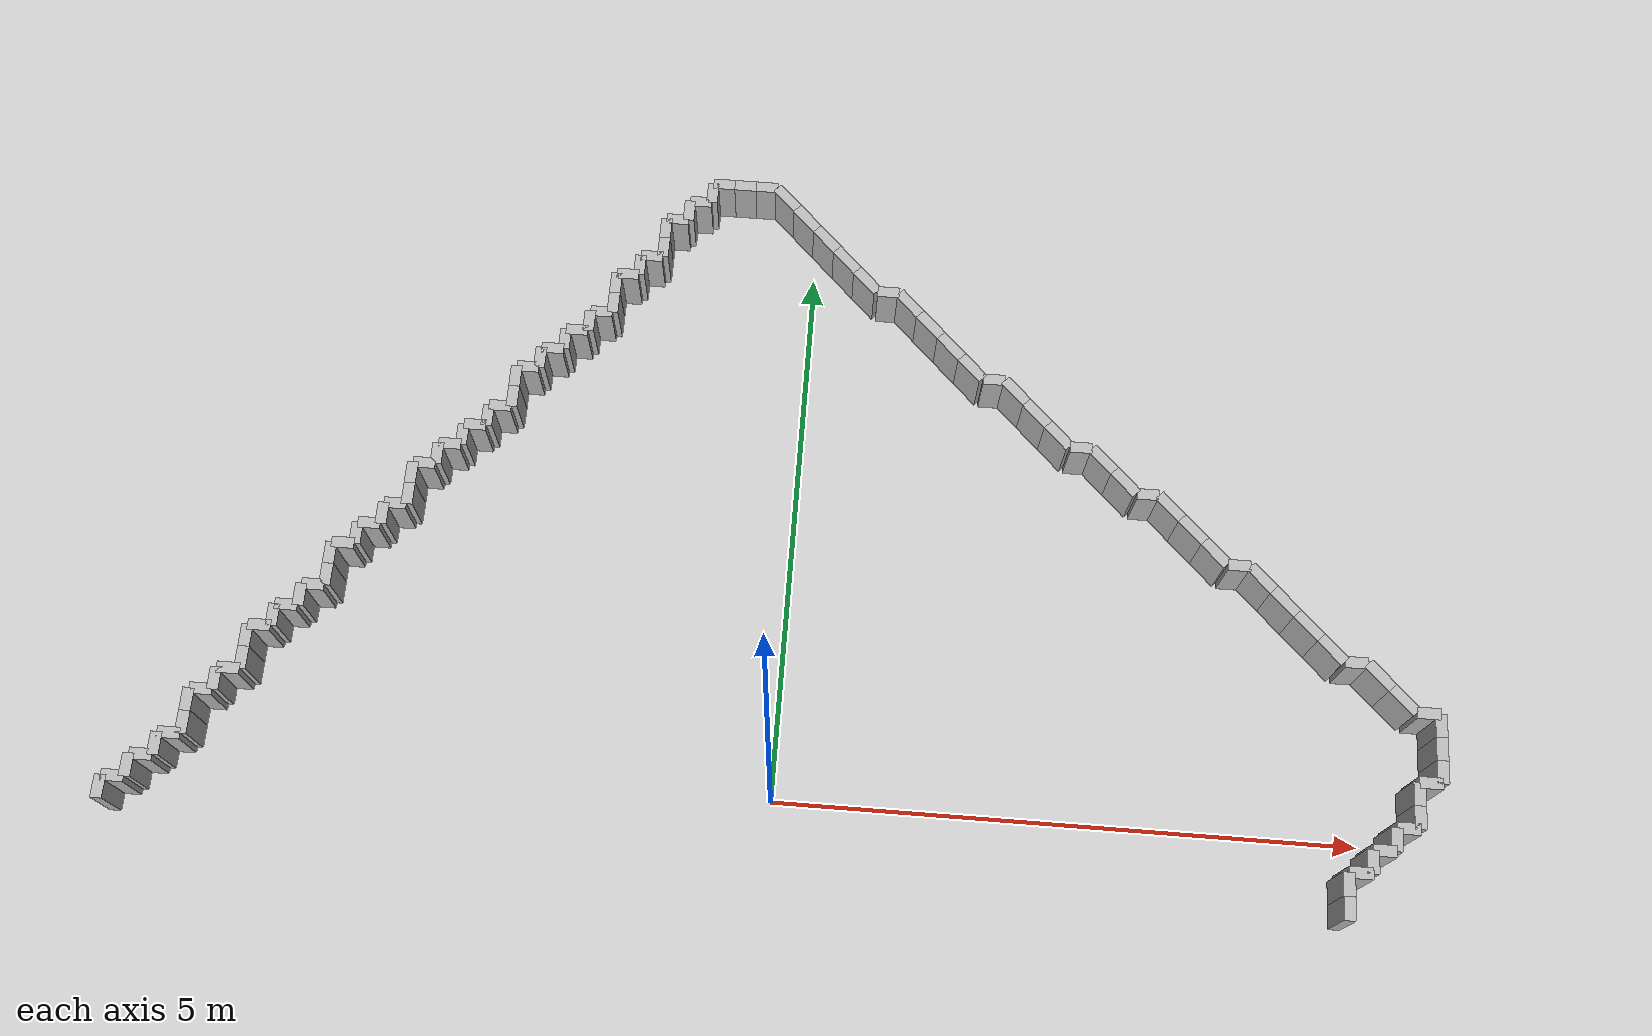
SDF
<sdf version="1.6">
 <world name="default">
  <include><uri>model://ground_plane</uri></include>
  <include><uri>model://sun</uri></include>
  <model name="wall_0">
   <static>true</static>
   <pose>4.899803921568628 -0.30000000000000004 0 0 0 0.0019607818008702204</pose>
   <link name="link">
    <collision name="collision"><geometry><box><size>0.20000038446714313 0.1 1</size></box></geometry></collision>
    <visual name="visual"><geometry><box><size>0.20000038446714313 0.1 1</size></box></geometry></visual>
   </link>
  </model>
  <model name="wall_1">
   <static>true</static>
   <pose>4.999803921568628 -0.2 0 0 0 1.5707963267948966</pose>
   <link name="link">
    <collision name="collision"><geometry><box><size>0.19960784313725524 0.1 1</size></box></geometry></collision>
    <visual name="visual"><geometry><box><size>0.19960784313725524 0.1 1</size></box></geometry></visual>
   </link>
  </model>
  <model name="wall_2">
   <static>true</static>
   <pose>5.099803921568627 -0.1 0 0 0 0.001960781800869943</pose>
   <link name="link">
    <collision name="collision"><geometry><box><size>0.20000038446714313 0.1 1</size></box></geometry></collision>
    <visual name="visual"><geometry><box><size>0.20000038446714313 0.1 1</size></box></geometry></visual>
   </link>
  </model>
  <model name="wall_3">
   <static>true</static>
   <pose>5.199803921568628 0.0 0 0 0 1.5707963267948966</pose>
   <link name="link">
    <collision name="collision"><geometry><box><size>0.19960784313725527 0.1 1</size></box></geometry></collision>
    <visual name="visual"><geometry><box><size>0.19960784313725527 0.1 1</size></box></geometry></visual>
   </link>
  </model>
  <model name="wall_4">
   <static>true</static>
   <pose>5.299803921568628 0.1 0 0 0 0.001960781800869943</pose>
   <link name="link">
    <collision name="collision"><geometry><box><size>0.20000038446714313 0.1 1</size></box></geometry></collision>
    <visual name="visual"><geometry><box><size>0.20000038446714313 0.1 1</size></box></geometry></visual>
   </link>
  </model>
  <model name="wall_5">
   <static>true</static>
   <pose>5.399803921568628 0.2 0 0 0 1.5707963267948966</pose>
   <link name="link">
    <collision name="collision"><geometry><box><size>0.19960784313725524 0.1 1</size></box></geometry></collision>
    <visual name="visual"><geometry><box><size>0.19960784313725524 0.1 1</size></box></geometry></visual>
   </link>
  </model>
  <model name="wall_6">
   <static>true</static>
   <pose>5.399803921568628 0.39980392156862765 0 0 0 1.5707963267948966</pose>
   <link name="link">
    <collision name="collision"><geometry><box><size>0.2 0.1 1</size></box></geometry></collision>
    <visual name="visual"><geometry><box><size>0.2 0.1 1</size></box></geometry></visual>
   </link>
  </model>
  <model name="wall_7">
   <static>true</static>
   <pose>5.499803921568628 0.5 0 0 0 0.001960781800869943</pose>
   <link name="link">
    <collision name="collision"><geometry><box><size>0.20000038446714313 0.1 1</size></box></geometry></collision>
    <visual name="visual"><geometry><box><size>0.20000038446714313 0.1 1</size></box></geometry></visual>
   </link>
  </model>
  <model name="wall_8">
   <static>true</static>
   <pose>5.599803921568628 0.6000000000000001 0 0 0 1.5707963267948966</pose>
   <link name="link">
    <collision name="collision"><geometry><box><size>0.19960784313725533 0.1 1</size></box></geometry></collision>
    <visual name="visual"><geometry><box><size>0.19960784313725533 0.1 1</size></box></geometry></visual>
   </link>
  </model>
  <model name="wall_9">
   <static>true</static>
   <pose>5.599803921568628 0.7998039215686277 0 0 0 1.5707963267948966</pose>
   <link name="link">
    <collision name="collision"><geometry><box><size>0.19999999999999996 0.1 1</size></box></geometry></collision>
    <visual name="visual"><geometry><box><size>0.19999999999999996 0.1 1</size></box></geometry></visual>
   </link>
  </model>
  <model name="wall_10">
   <static>true</static>
   <pose>5.599803921568628 0.9998039215686276 0 0 0 1.5707963267948966</pose>
   <link name="link">
    <collision name="collision"><geometry><box><size>0.20000000000000007 0.1 1</size></box></geometry></collision>
    <visual name="visual"><geometry><box><size>0.20000000000000007 0.1 1</size></box></geometry></visual>
   </link>
  </model>
  <model name="wall_11">
   <static>true</static>
   <pose>5.499803921568628 1.0998039215686277 0 0 0 3.141592653589793</pose>
   <link name="link">
    <collision name="collision"><geometry><box><size>0.20000000000000018 0.1 1</size></box></geometry></collision>
    <visual name="visual"><geometry><box><size>0.20000000000000018 0.1 1</size></box></geometry></visual>
   </link>
  </model>
  <model name="wall_12">
   <static>true</static>
   <pose>5.299803921568628 1.1998039215686278 0 0 0 2.3561944901923453</pose>
   <link name="link">
    <collision name="collision"><geometry><box><size>0.28284271247461906 0.1 1</size></box></geometry></collision>
    <visual name="visual"><geometry><box><size>0.28284271247461906 0.1 1</size></box></geometry></visual>
   </link>
  </model>
  <model name="wall_13">
   <static>true</static>
   <pose>5.099803921568627 1.3998039215686275 0 0 0 2.3561944901923453</pose>
   <link name="link">
    <collision name="collision"><geometry><box><size>0.28284271247461906 0.1 1</size></box></geometry></collision>
    <visual name="visual"><geometry><box><size>0.28284271247461906 0.1 1</size></box></geometry></visual>
   </link>
  </model>
  <model name="wall_14">
   <static>true</static>
   <pose>4.899803921568628 1.4998039215686276 0 0 0 3.141592653589793</pose>
   <link name="link">
    <collision name="collision"><geometry><box><size>0.20000000000000018 0.1 1</size></box></geometry></collision>
    <visual name="visual"><geometry><box><size>0.20000000000000018 0.1 1</size></box></geometry></visual>
   </link>
  </model>
  <model name="wall_15">
   <static>true</static>
   <pose>4.699803921568628 1.5998039215686277 0 0 0 2.3561944901923426</pose>
   <link name="link">
    <collision name="collision"><geometry><box><size>0.2828427124746186 0.1 1</size></box></geometry></collision>
    <visual name="visual"><geometry><box><size>0.2828427124746186 0.1 1</size></box></geometry></visual>
   </link>
  </model>
  <model name="wall_16">
   <static>true</static>
   <pose>4.499803921568628 1.799803921568628 0 0 0 2.3561944901923453</pose>
   <link name="link">
    <collision name="collision"><geometry><box><size>0.28284271247461906 0.1 1</size></box></geometry></collision>
    <visual name="visual"><geometry><box><size>0.28284271247461906 0.1 1</size></box></geometry></visual>
   </link>
  </model>
  <model name="wall_17">
   <static>true</static>
   <pose>4.299803921568628 1.9998039215686276 0 0 0 2.3561944901923453</pose>
   <link name="link">
    <collision name="collision"><geometry><box><size>0.28284271247461906 0.1 1</size></box></geometry></collision>
    <visual name="visual"><geometry><box><size>0.28284271247461906 0.1 1</size></box></geometry></visual>
   </link>
  </model>
  <model name="wall_18">
   <static>true</static>
   <pose>4.099803921568627 2.199803921568628 0 0 0 2.356194490192345</pose>
   <link name="link">
    <collision name="collision"><geometry><box><size>0.2828427124746193 0.1 1</size></box></geometry></collision>
    <visual name="visual"><geometry><box><size>0.2828427124746193 0.1 1</size></box></geometry></visual>
   </link>
  </model>
  <model name="wall_19">
   <static>true</static>
   <pose>3.899803921568628 2.299803921568628 0 0 0 3.141592653589793</pose>
   <link name="link">
    <collision name="collision"><geometry><box><size>0.19999999999999973 0.1 1</size></box></geometry></collision>
    <visual name="visual"><geometry><box><size>0.19999999999999973 0.1 1</size></box></geometry></visual>
   </link>
  </model>
  <model name="wall_20">
   <static>true</static>
   <pose>3.699803921568628 2.399803921568628 0 0 0 2.356194490192346</pose>
   <link name="link">
    <collision name="collision"><geometry><box><size>0.28284271247461895 0.1 1</size></box></geometry></collision>
    <visual name="visual"><geometry><box><size>0.28284271247461895 0.1 1</size></box></geometry></visual>
   </link>
  </model>
  <model name="wall_21">
   <static>true</static>
   <pose>3.4998039215686276 2.5998039215686277 0 0 0 2.356194490192344</pose>
   <link name="link">
    <collision name="collision"><geometry><box><size>0.28284271247461895 0.1 1</size></box></geometry></collision>
    <visual name="visual"><geometry><box><size>0.28284271247461895 0.1 1</size></box></geometry></visual>
   </link>
  </model>
  <model name="wall_22">
   <static>true</static>
   <pose>3.299803921568628 2.799803921568628 0 0 0 2.356194490192345</pose>
   <link name="link">
    <collision name="collision"><geometry><box><size>0.2828427124746193 0.1 1</size></box></geometry></collision>
    <visual name="visual"><geometry><box><size>0.2828427124746193 0.1 1</size></box></geometry></visual>
   </link>
  </model>
  <model name="wall_23">
   <static>true</static>
   <pose>3.0998039215686277 2.899803921568628 0 0 0 3.141592653589793</pose>
   <link name="link">
    <collision name="collision"><geometry><box><size>0.20000000000000018 0.1 1</size></box></geometry></collision>
    <visual name="visual"><geometry><box><size>0.20000000000000018 0.1 1</size></box></geometry></visual>
   </link>
  </model>
  <model name="wall_24">
   <static>true</static>
   <pose>2.899803921568628 2.9998039215686276 0 0 0 2.356194490192345</pose>
   <link name="link">
    <collision name="collision"><geometry><box><size>0.2828427124746186 0.1 1</size></box></geometry></collision>
    <visual name="visual"><geometry><box><size>0.2828427124746186 0.1 1</size></box></geometry></visual>
   </link>
  </model>
  <model name="wall_25">
   <static>true</static>
   <pose>2.699803921568628 3.199803921568628 0 0 0 2.356194490192345</pose>
   <link name="link">
    <collision name="collision"><geometry><box><size>0.2828427124746193 0.1 1</size></box></geometry></collision>
    <visual name="visual"><geometry><box><size>0.2828427124746193 0.1 1</size></box></geometry></visual>
   </link>
  </model>
  <model name="wall_26">
   <static>true</static>
   <pose>2.4998039215686276 3.299803921568628 0 0 0 3.141592653589793</pose>
   <link name="link">
    <collision name="collision"><geometry><box><size>0.20000000000000018 0.1 1</size></box></geometry></collision>
    <visual name="visual"><geometry><box><size>0.20000000000000018 0.1 1</size></box></geometry></visual>
   </link>
  </model>
  <model name="wall_27">
   <static>true</static>
   <pose>2.2998039215686275 3.399803921568628 0 0 0 2.356194490192345</pose>
   <link name="link">
    <collision name="collision"><geometry><box><size>0.2828427124746186 0.1 1</size></box></geometry></collision>
    <visual name="visual"><geometry><box><size>0.2828427124746186 0.1 1</size></box></geometry></visual>
   </link>
  </model>
  <model name="wall_28">
   <static>true</static>
   <pose>2.0998039215686277 3.5998039215686277 0 0 0 2.356194490192345</pose>
   <link name="link">
    <collision name="collision"><geometry><box><size>0.2828427124746193 0.1 1</size></box></geometry></collision>
    <visual name="visual"><geometry><box><size>0.2828427124746193 0.1 1</size></box></geometry></visual>
   </link>
  </model>
  <model name="wall_29">
   <static>true</static>
   <pose>1.8998039215686275 3.799803921568628 0 0 0 2.3561944901923444</pose>
   <link name="link">
    <collision name="collision"><geometry><box><size>0.28284271247461906 0.1 1</size></box></geometry></collision>
    <visual name="visual"><geometry><box><size>0.28284271247461906 0.1 1</size></box></geometry></visual>
   </link>
  </model>
  <model name="wall_30">
   <static>true</static>
   <pose>1.6998039215686278 3.899803921568628 0 0 0 3.141592653589793</pose>
   <link name="link">
    <collision name="collision"><geometry><box><size>0.19999999999999996 0.1 1</size></box></geometry></collision>
    <visual name="visual"><geometry><box><size>0.19999999999999996 0.1 1</size></box></geometry></visual>
   </link>
  </model>
  <model name="wall_31">
   <static>true</static>
   <pose>1.4998039215686276 3.999803921568628 0 0 0 2.3561944901923444</pose>
   <link name="link">
    <collision name="collision"><geometry><box><size>0.28284271247461906 0.1 1</size></box></geometry></collision>
    <visual name="visual"><geometry><box><size>0.28284271247461906 0.1 1</size></box></geometry></visual>
   </link>
  </model>
  <model name="wall_32">
   <static>true</static>
   <pose>1.2998039215686277 4.199803921568628 0 0 0 2.356194490192347</pose>
   <link name="link">
    <collision name="collision"><geometry><box><size>0.2828427124746186 0.1 1</size></box></geometry></collision>
    <visual name="visual"><geometry><box><size>0.2828427124746186 0.1 1</size></box></geometry></visual>
   </link>
  </model>
  <model name="wall_33">
   <static>true</static>
   <pose>1.0998039215686277 4.399803921568628 0 0 0 2.3561944901923444</pose>
   <link name="link">
    <collision name="collision"><geometry><box><size>0.28284271247461906 0.1 1</size></box></geometry></collision>
    <visual name="visual"><geometry><box><size>0.28284271247461906 0.1 1</size></box></geometry></visual>
   </link>
  </model>
  <model name="wall_34">
   <static>true</static>
   <pose>0.8998039215686277 4.599803921568627 0 0 0 2.3561944901923444</pose>
   <link name="link">
    <collision name="collision"><geometry><box><size>0.28284271247461906 0.1 1</size></box></geometry></collision>
    <visual name="visual"><geometry><box><size>0.28284271247461906 0.1 1</size></box></geometry></visual>
   </link>
  </model>
  <model name="wall_35">
   <static>true</static>
   <pose>0.6998039215686276 4.699803921568628 0 0 0 3.141592653589793</pose>
   <link name="link">
    <collision name="collision"><geometry><box><size>0.20000000000000007 0.1 1</size></box></geometry></collision>
    <visual name="visual"><geometry><box><size>0.20000000000000007 0.1 1</size></box></geometry></visual>
   </link>
  </model>
  <model name="wall_36">
   <static>true</static>
   <pose>0.49980392156862763 4.799803921568628 0 0 0 2.3561944901923444</pose>
   <link name="link">
    <collision name="collision"><geometry><box><size>0.28284271247461906 0.1 1</size></box></geometry></collision>
    <visual name="visual"><geometry><box><size>0.28284271247461906 0.1 1</size></box></geometry></visual>
   </link>
  </model>
  <model name="wall_37">
   <static>true</static>
   <pose>0.2998039215686277 4.999803921568628 0 0 0 2.3561944901923444</pose>
   <link name="link">
    <collision name="collision"><geometry><box><size>0.2828427124746191 0.1 1</size></box></geometry></collision>
    <visual name="visual"><geometry><box><size>0.2828427124746191 0.1 1</size></box></geometry></visual>
   </link>
  </model>
  <model name="wall_38">
   <static>true</static>
   <pose>0.09980392156862763 5.199803921568629 0 0 0 2.3561944901923444</pose>
   <link name="link">
    <collision name="collision"><geometry><box><size>0.2828427124746191 0.1 1</size></box></geometry></collision>
    <visual name="visual"><geometry><box><size>0.2828427124746191 0.1 1</size></box></geometry></visual>
   </link>
  </model>
  <model name="wall_39">
   <static>true</static>
   <pose>-0.10019607843137238 5.399803921568628 0 0 0 2.3561944901923466</pose>
   <link name="link">
    <collision name="collision"><geometry><box><size>0.2828427124746185 0.1 1</size></box></geometry></collision>
    <visual name="visual"><geometry><box><size>0.2828427124746185 0.1 1</size></box></geometry></visual>
   </link>
  </model>
  <model name="wall_40">
   <static>true</static>
   <pose>-0.3001960784313724 5.599803921568627 0 0 0 2.3561944901923444</pose>
   <link name="link">
    <collision name="collision"><geometry><box><size>0.2828427124746191 0.1 1</size></box></geometry></collision>
    <visual name="visual"><geometry><box><size>0.2828427124746191 0.1 1</size></box></geometry></visual>
   </link>
  </model>
  <model name="wall_41">
   <static>true</static>
   <pose>-0.5001960784313724 5.699803921568628 0 0 0 3.141592653589793</pose>
   <link name="link">
    <collision name="collision"><geometry><box><size>0.20000000000000007 0.1 1</size></box></geometry></collision>
    <visual name="visual"><geometry><box><size>0.20000000000000007 0.1 1</size></box></geometry></visual>
   </link>
  </model>
  <model name="wall_42">
   <static>true</static>
   <pose>-0.7001960784313724 5.699803921568628 0 0 0 3.141592653589793</pose>
   <link name="link">
    <collision name="collision"><geometry><box><size>0.19999999999999996 0.1 1</size></box></geometry></collision>
    <visual name="visual"><geometry><box><size>0.19999999999999996 0.1 1</size></box></geometry></visual>
   </link>
  </model>
  <model name="wall_43">
   <static>true</static>
   <pose>-0.9 5.699803921568628 0 0 0 3.141592653589793</pose>
   <link name="link">
    <collision name="collision"><geometry><box><size>0.19960784313725521 0.1 1</size></box></geometry></collision>
    <visual name="visual"><geometry><box><size>0.19960784313725521 0.1 1</size></box></geometry></visual>
   </link>
  </model>
  <model name="wall_44">
   <static>true</static>
   <pose>-1.0 5.599803921568627 0 0 0 -1.5727571085957666</pose>
   <link name="link">
    <collision name="collision"><geometry><box><size>0.20000038446714313 0.1 1</size></box></geometry></collision>
    <visual name="visual"><geometry><box><size>0.20000038446714313 0.1 1</size></box></geometry></visual>
   </link>
  </model>
  <model name="wall_45">
   <static>true</static>
   <pose>-1.1 5.499803921568628 0 0 0 3.141592653589793</pose>
   <link name="link">
    <collision name="collision"><geometry><box><size>0.19960784313725521 0.1 1</size></box></geometry></collision>
    <visual name="visual"><geometry><box><size>0.19960784313725521 0.1 1</size></box></geometry></visual>
   </link>
  </model>
  <model name="wall_46">
   <static>true</static>
   <pose>-1.2000000000000002 5.399803921568628 0 0 0 -1.5727571085957677</pose>
   <link name="link">
    <collision name="collision"><geometry><box><size>0.20000038446714224 0.1 1</size></box></geometry></collision>
    <visual name="visual"><geometry><box><size>0.20000038446714224 0.1 1</size></box></geometry></visual>
   </link>
  </model>
  <model name="wall_47">
   <static>true</static>
   <pose>-1.3000000000000003 5.299803921568628 0 0 0 3.141592653589793</pose>
   <link name="link">
    <collision name="collision"><geometry><box><size>0.19960784313725521 0.1 1</size></box></geometry></collision>
    <visual name="visual"><geometry><box><size>0.19960784313725521 0.1 1</size></box></geometry></visual>
   </link>
  </model>
  <model name="wall_48">
   <static>true</static>
   <pose>-1.3998039215686278 5.199803921568629 0 0 0 -1.5707963267948966</pose>
   <link name="link">
    <collision name="collision"><geometry><box><size>0.20000000000000018 0.1 1</size></box></geometry></collision>
    <visual name="visual"><geometry><box><size>0.20000000000000018 0.1 1</size></box></geometry></visual>
   </link>
  </model>
  <model name="wall_49">
   <static>true</static>
   <pose>-1.4000000000000001 4.999803921568628 0 0 0 -1.5727571085957666</pose>
   <link name="link">
    <collision name="collision"><geometry><box><size>0.20000038446714313 0.1 1</size></box></geometry></collision>
    <visual name="visual"><geometry><box><size>0.20000038446714313 0.1 1</size></box></geometry></visual>
   </link>
  </model>
  <model name="wall_50">
   <static>true</static>
   <pose>-1.4999999999999998 4.899803921568628 0 0 0 3.141592653589793</pose>
   <link name="link">
    <collision name="collision"><geometry><box><size>0.19960784313725455 0.1 1</size></box></geometry></collision>
    <visual name="visual"><geometry><box><size>0.19960784313725455 0.1 1</size></box></geometry></visual>
   </link>
  </model>
  <model name="wall_51">
   <static>true</static>
   <pose>-1.5999999999999996 4.799803921568628 0 0 0 -1.57275710859577</pose>
   <link name="link">
    <collision name="collision"><geometry><box><size>0.20000038446714313 0.1 1</size></box></geometry></collision>
    <visual name="visual"><geometry><box><size>0.20000038446714313 0.1 1</size></box></geometry></visual>
   </link>
  </model>
  <model name="wall_52">
   <static>true</static>
   <pose>-1.6999999999999997 4.699803921568628 0 0 0 3.141592653589793</pose>
   <link name="link">
    <collision name="collision"><geometry><box><size>0.19960784313725455 0.1 1</size></box></geometry></collision>
    <visual name="visual"><geometry><box><size>0.19960784313725455 0.1 1</size></box></geometry></visual>
   </link>
  </model>
  <model name="wall_53">
   <static>true</static>
   <pose>-1.799803921568627 4.599803921568627 0 0 0 -1.5707963267948966</pose>
   <link name="link">
    <collision name="collision"><geometry><box><size>0.20000000000000018 0.1 1</size></box></geometry></collision>
    <visual name="visual"><geometry><box><size>0.20000000000000018 0.1 1</size></box></geometry></visual>
   </link>
  </model>
  <model name="wall_54">
   <static>true</static>
   <pose>-1.7999999999999998 4.399803921568628 0 0 0 -1.57275710859577</pose>
   <link name="link">
    <collision name="collision"><geometry><box><size>0.20000038446714313 0.1 1</size></box></geometry></collision>
    <visual name="visual"><geometry><box><size>0.20000038446714313 0.1 1</size></box></geometry></visual>
   </link>
  </model>
  <model name="wall_55">
   <static>true</static>
   <pose>-1.8999999999999997 4.2998039215686275 0 0 0 3.141592653589793</pose>
   <link name="link">
    <collision name="collision"><geometry><box><size>0.19960784313725455 0.1 1</size></box></geometry></collision>
    <visual name="visual"><geometry><box><size>0.19960784313725455 0.1 1</size></box></geometry></visual>
   </link>
  </model>
  <model name="wall_56">
   <static>true</static>
   <pose>-1.9999999999999996 4.199803921568628 0 0 0 -1.57275710859577</pose>
   <link name="link">
    <collision name="collision"><geometry><box><size>0.20000038446714224 0.1 1</size></box></geometry></collision>
    <visual name="visual"><geometry><box><size>0.20000038446714224 0.1 1</size></box></geometry></visual>
   </link>
  </model>
  <model name="wall_57">
   <static>true</static>
   <pose>-2.0999999999999996 4.099803921568628 0 0 0 3.141592653589793</pose>
   <link name="link">
    <collision name="collision"><geometry><box><size>0.19960784313725455 0.1 1</size></box></geometry></collision>
    <visual name="visual"><geometry><box><size>0.19960784313725455 0.1 1</size></box></geometry></visual>
   </link>
  </model>
  <model name="wall_58">
   <static>true</static>
   <pose>-2.1999999999999997 3.999803921568628 0 0 0 -1.572757108595771</pose>
   <link name="link">
    <collision name="collision"><geometry><box><size>0.20000038446714313 0.1 1</size></box></geometry></collision>
    <visual name="visual"><geometry><box><size>0.20000038446714313 0.1 1</size></box></geometry></visual>
   </link>
  </model>
  <model name="wall_59">
   <static>true</static>
   <pose>-2.3 3.899803921568628 0 0 0 3.141592653589793</pose>
   <link name="link">
    <collision name="collision"><geometry><box><size>0.19960784313725455 0.1 1</size></box></geometry></collision>
    <visual name="visual"><geometry><box><size>0.19960784313725455 0.1 1</size></box></geometry></visual>
   </link>
  </model>
  <model name="wall_60">
   <static>true</static>
   <pose>-2.4 3.799803921568628 0 0 0 -1.572757108595771</pose>
   <link name="link">
    <collision name="collision"><geometry><box><size>0.20000038446714313 0.1 1</size></box></geometry></collision>
    <visual name="visual"><geometry><box><size>0.20000038446714313 0.1 1</size></box></geometry></visual>
   </link>
  </model>
  <model name="wall_61">
   <static>true</static>
   <pose>-2.5 3.699803921568628 0 0 0 3.141592653589793</pose>
   <link name="link">
    <collision name="collision"><geometry><box><size>0.19960784313725455 0.1 1</size></box></geometry></collision>
    <visual name="visual"><geometry><box><size>0.19960784313725455 0.1 1</size></box></geometry></visual>
   </link>
  </model>
  <model name="wall_62">
   <static>true</static>
   <pose>-2.5998039215686273 3.5998039215686277 0 0 0 -1.5707963267948966</pose>
   <link name="link">
    <collision name="collision"><geometry><box><size>0.20000000000000018 0.1 1</size></box></geometry></collision>
    <visual name="visual"><geometry><box><size>0.20000000000000018 0.1 1</size></box></geometry></visual>
   </link>
  </model>
  <model name="wall_63">
   <static>true</static>
   <pose>-2.5999999999999996 3.399803921568628 0 0 0 -1.5727571085957688</pose>
   <link name="link">
    <collision name="collision"><geometry><box><size>0.2000003844671427 0.1 1</size></box></geometry></collision>
    <visual name="visual"><geometry><box><size>0.2000003844671427 0.1 1</size></box></geometry></visual>
   </link>
  </model>
  <model name="wall_64">
   <static>true</static>
   <pose>-2.6999999999999997 3.299803921568628 0 0 0 3.141592653589793</pose>
   <link name="link">
    <collision name="collision"><geometry><box><size>0.19960784313725455 0.1 1</size></box></geometry></collision>
    <visual name="visual"><geometry><box><size>0.19960784313725455 0.1 1</size></box></geometry></visual>
   </link>
  </model>
  <model name="wall_65">
   <static>true</static>
   <pose>-2.8 3.199803921568628 0 0 0 -1.572757108595771</pose>
   <link name="link">
    <collision name="collision"><geometry><box><size>0.20000038446714313 0.1 1</size></box></geometry></collision>
    <visual name="visual"><geometry><box><size>0.20000038446714313 0.1 1</size></box></geometry></visual>
   </link>
  </model>
  <model name="wall_66">
   <static>true</static>
   <pose>-2.9 3.0998039215686277 0 0 0 3.141592653589793</pose>
   <link name="link">
    <collision name="collision"><geometry><box><size>0.19960784313725455 0.1 1</size></box></geometry></collision>
    <visual name="visual"><geometry><box><size>0.19960784313725455 0.1 1</size></box></geometry></visual>
   </link>
  </model>
  <model name="wall_67">
   <static>true</static>
   <pose>-3.0 2.9998039215686276 0 0 0 -1.5727571085957688</pose>
   <link name="link">
    <collision name="collision"><geometry><box><size>0.2000003844671427 0.1 1</size></box></geometry></collision>
    <visual name="visual"><geometry><box><size>0.2000003844671427 0.1 1</size></box></geometry></visual>
   </link>
  </model>
  <model name="wall_68">
   <static>true</static>
   <pose>-3.0999999999999996 2.899803921568628 0 0 0 3.141592653589793</pose>
   <link name="link">
    <collision name="collision"><geometry><box><size>0.19960784313725455 0.1 1</size></box></geometry></collision>
    <visual name="visual"><geometry><box><size>0.19960784313725455 0.1 1</size></box></geometry></visual>
   </link>
  </model>
  <model name="wall_69">
   <static>true</static>
   <pose>-3.1999999999999997 2.799803921568628 0 0 0 -1.572757108595771</pose>
   <link name="link">
    <collision name="collision"><geometry><box><size>0.20000038446714313 0.1 1</size></box></geometry></collision>
    <visual name="visual"><geometry><box><size>0.20000038446714313 0.1 1</size></box></geometry></visual>
   </link>
  </model>
  <model name="wall_70">
   <static>true</static>
   <pose>-3.3 2.699803921568628 0 0 0 3.141592653589793</pose>
   <link name="link">
    <collision name="collision"><geometry><box><size>0.19960784313725455 0.1 1</size></box></geometry></collision>
    <visual name="visual"><geometry><box><size>0.19960784313725455 0.1 1</size></box></geometry></visual>
   </link>
  </model>
  <model name="wall_71">
   <static>true</static>
   <pose>-3.399803921568627 2.5998039215686277 0 0 0 -1.5707963267948966</pose>
   <link name="link">
    <collision name="collision"><geometry><box><size>0.20000000000000018 0.1 1</size></box></geometry></collision>
    <visual name="visual"><geometry><box><size>0.20000000000000018 0.1 1</size></box></geometry></visual>
   </link>
  </model>
  <model name="wall_72">
   <static>true</static>
   <pose>-3.4 2.399803921568628 0 0 0 -1.572757108595771</pose>
   <link name="link">
    <collision name="collision"><geometry><box><size>0.2000003844671427 0.1 1</size></box></geometry></collision>
    <visual name="visual"><geometry><box><size>0.2000003844671427 0.1 1</size></box></geometry></visual>
   </link>
  </model>
  <model name="wall_73">
   <static>true</static>
   <pose>-3.5 2.299803921568628 0 0 0 3.141592653589793</pose>
   <link name="link">
    <collision name="collision"><geometry><box><size>0.19960784313725455 0.1 1</size></box></geometry></collision>
    <visual name="visual"><geometry><box><size>0.19960784313725455 0.1 1</size></box></geometry></visual>
   </link>
  </model>
  <model name="wall_74">
   <static>true</static>
   <pose>-3.5999999999999996 2.199803921568628 0 0 0 -1.5727571085957688</pose>
   <link name="link">
    <collision name="collision"><geometry><box><size>0.20000038446714313 0.1 1</size></box></geometry></collision>
    <visual name="visual"><geometry><box><size>0.20000038446714313 0.1 1</size></box></geometry></visual>
   </link>
  </model>
  <model name="wall_75">
   <static>true</static>
   <pose>-3.6999999999999997 2.0998039215686277 0 0 0 3.141592653589793</pose>
   <link name="link">
    <collision name="collision"><geometry><box><size>0.19960784313725455 0.1 1</size></box></geometry></collision>
    <visual name="visual"><geometry><box><size>0.19960784313725455 0.1 1</size></box></geometry></visual>
   </link>
  </model>
  <model name="wall_76">
   <static>true</static>
   <pose>-3.8 1.9998039215686276 0 0 0 -1.572757108595771</pose>
   <link name="link">
    <collision name="collision"><geometry><box><size>0.2000003844671429 0.1 1</size></box></geometry></collision>
    <visual name="visual"><geometry><box><size>0.2000003844671429 0.1 1</size></box></geometry></visual>
   </link>
  </model>
  <model name="wall_77">
   <static>true</static>
   <pose>-3.9 1.8998039215686278 0 0 0 3.141592653589793</pose>
   <link name="link">
    <collision name="collision"><geometry><box><size>0.19960784313725455 0.1 1</size></box></geometry></collision>
    <visual name="visual"><geometry><box><size>0.19960784313725455 0.1 1</size></box></geometry></visual>
   </link>
  </model>
  <model name="wall_78">
   <static>true</static>
   <pose>-3.999803921568627 1.799803921568628 0 0 0 -1.5707963267948966</pose>
   <link name="link">
    <collision name="collision"><geometry><box><size>0.19999999999999996 0.1 1</size></box></geometry></collision>
    <visual name="visual"><geometry><box><size>0.19999999999999996 0.1 1</size></box></geometry></visual>
   </link>
  </model>
  <model name="wall_79">
   <static>true</static>
   <pose>-4.0 1.5998039215686277 0 0 0 -1.5727571085957688</pose>
   <link name="link">
    <collision name="collision"><geometry><box><size>0.20000038446714313 0.1 1</size></box></geometry></collision>
    <visual name="visual"><geometry><box><size>0.20000038446714313 0.1 1</size></box></geometry></visual>
   </link>
  </model>
  <model name="wall_80">
   <static>true</static>
   <pose>-4.1 1.4998039215686276 0 0 0 3.141592653589793</pose>
   <link name="link">
    <collision name="collision"><geometry><box><size>0.19960784313725455 0.1 1</size></box></geometry></collision>
    <visual name="visual"><geometry><box><size>0.19960784313725455 0.1 1</size></box></geometry></visual>
   </link>
  </model>
  <model name="wall_81">
   <static>true</static>
   <pose>-4.199999999999999 1.3998039215686275 0 0 0 -1.572757108595771</pose>
   <link name="link">
    <collision name="collision"><geometry><box><size>0.2000003844671429 0.1 1</size></box></geometry></collision>
    <visual name="visual"><geometry><box><size>0.2000003844671429 0.1 1</size></box></geometry></visual>
   </link>
  </model>
  <model name="wall_82">
   <static>true</static>
   <pose>-4.3 1.2998039215686277 0 0 0 3.141592653589793</pose>
   <link name="link">
    <collision name="collision"><geometry><box><size>0.19960784313725455 0.1 1</size></box></geometry></collision>
    <visual name="visual"><geometry><box><size>0.19960784313725455 0.1 1</size></box></geometry></visual>
   </link>
  </model>
  <model name="wall_83">
   <static>true</static>
   <pose>-4.4 1.1998039215686278 0 0 0 -1.572757108595771</pose>
   <link name="link">
    <collision name="collision"><geometry><box><size>0.2000003844671429 0.1 1</size></box></geometry></collision>
    <visual name="visual"><geometry><box><size>0.2000003844671429 0.1 1</size></box></geometry></visual>
   </link>
  </model>
  <model name="wall_84">
   <static>true</static>
   <pose>-4.5 1.0998039215686277 0 0 0 3.141592653589793</pose>
   <link name="link">
    <collision name="collision"><geometry><box><size>0.19960784313725455 0.1 1</size></box></geometry></collision>
    <visual name="visual"><geometry><box><size>0.19960784313725455 0.1 1</size></box></geometry></visual>
   </link>
  </model>
  <model name="wall_85">
   <static>true</static>
   <pose>-4.599803921568627 0.9998039215686276 0 0 0 -1.5707963267948966</pose>
   <link name="link">
    <collision name="collision"><geometry><box><size>0.20000000000000007 0.1 1</size></box></geometry></collision>
    <visual name="visual"><geometry><box><size>0.20000000000000007 0.1 1</size></box></geometry></visual>
   </link>
  </model>
  <model name="wall_86">
   <static>true</static>
   <pose>-4.6 0.7998039215686277 0 0 0 -1.572757108595771</pose>
   <link name="link">
    <collision name="collision"><geometry><box><size>0.2000003844671429 0.1 1</size></box></geometry></collision>
    <visual name="visual"><geometry><box><size>0.2000003844671429 0.1 1</size></box></geometry></visual>
   </link>
  </model>
  <model name="wall_87">
   <static>true</static>
   <pose>-4.7 0.6998039215686277 0 0 0 3.141592653589793</pose>
   <link name="link">
    <collision name="collision"><geometry><box><size>0.19960784313725455 0.1 1</size></box></geometry></collision>
    <visual name="visual"><geometry><box><size>0.19960784313725455 0.1 1</size></box></geometry></visual>
   </link>
  </model>
  <model name="wall_88">
   <static>true</static>
   <pose>-4.800000000000001 0.5998039215686277 0 0 0 -1.572757108595771</pose>
   <link name="link">
    <collision name="collision"><geometry><box><size>0.20000038446714302 0.1 1</size></box></geometry></collision>
    <visual name="visual"><geometry><box><size>0.20000038446714302 0.1 1</size></box></geometry></visual>
   </link>
  </model>
  <model name="wall_89">
   <static>true</static>
   <pose>-4.9 0.49980392156862763 0 0 0 3.141592653589793</pose>
   <link name="link">
    <collision name="collision"><geometry><box><size>0.19960784313725455 0.1 1</size></box></geometry></collision>
    <visual name="visual"><geometry><box><size>0.19960784313725455 0.1 1</size></box></geometry></visual>
   </link>
  </model>
  <model name="wall_90">
   <static>true</static>
   <pose>-4.999803921568628 0.39980392156862765 0 0 0 -1.5707963267948966</pose>
   <link name="link">
    <collision name="collision"><geometry><box><size>0.2 0.1 1</size></box></geometry></collision>
    <visual name="visual"><geometry><box><size>0.2 0.1 1</size></box></geometry></visual>
   </link>
  </model>
  <model name="wall_91">
   <static>true</static>
   <pose>-5.0 0.19980392156862764 0 0 0 -1.5727571085957666</pose>
   <link name="link">
    <collision name="collision"><geometry><box><size>0.20000038446714294 0.1 1</size></box></geometry></collision>
    <visual name="visual"><geometry><box><size>0.20000038446714294 0.1 1</size></box></geometry></visual>
   </link>
  </model>
  <model name="wall_92">
   <static>true</static>
   <pose>-5.1 0.09980392156862763 0 0 0 3.141592653589793</pose>
   <link name="link">
    <collision name="collision"><geometry><box><size>0.19960784313725544 0.1 1</size></box></geometry></collision>
    <visual name="visual"><geometry><box><size>0.19960784313725544 0.1 1</size></box></geometry></visual>
   </link>
  </model>
  <model name="wall_93">
   <static>true</static>
   <pose>-5.2 -0.0001960784313723707 0 0 0 -1.5727571085957666</pose>
   <link name="link">
    <collision name="collision"><geometry><box><size>0.20000038446714297 0.1 1</size></box></geometry></collision>
    <visual name="visual"><geometry><box><size>0.20000038446714297 0.1 1</size></box></geometry></visual>
   </link>
  </model>
  <model name="wall_94">
   <static>true</static>
   <pose>-5.300000000000001 -0.10019607843137238 0 0 0 3.141592653589793</pose>
   <link name="link">
    <collision name="collision"><geometry><box><size>0.19960784313725544 0.1 1</size></box></geometry></collision>
    <visual name="visual"><geometry><box><size>0.19960784313725544 0.1 1</size></box></geometry></visual>
   </link>
  </model>
  <model name="wall_95">
   <static>true</static>
   <pose>-5.4 -0.20019607843137238 0 0 0 -1.5727571085957666</pose>
   <link name="link">
    <collision name="collision"><geometry><box><size>0.200000384467143 0.1 1</size></box></geometry></collision>
    <visual name="visual"><geometry><box><size>0.200000384467143 0.1 1</size></box></geometry></visual>
   </link>
  </model>
  <model name="wall_96">
   <static>true</static>
   <pose>-5.5 -0.3001960784313724 0 0 0 3.141592653589793</pose>
   <link name="link">
    <collision name="collision"><geometry><box><size>0.19960784313725544 0.1 1</size></box></geometry></collision>
    <visual name="visual"><geometry><box><size>0.19960784313725544 0.1 1</size></box></geometry></visual>
   </link>
  </model>
  <model name="wall_97">
   <static>true</static>
   <pose>-5.599803921568628 -0.4001960784313724 0 0 0 -1.5707963267948966</pose>
   <link name="link">
    <collision name="collision"><geometry><box><size>0.19999999999999996 0.1 1</size></box></geometry></collision>
    <visual name="visual"><geometry><box><size>0.19999999999999996 0.1 1</size></box></geometry></visual>
   </link>
  </model>
  <model name="wall_200">
   <static>true</static>
   <pose>4.7998039215686275 -0.6000000000000001 0 0 0 1.5707963267948966</pose>
   <link name="link">
    <collision name="collision"><geometry><box><size>0.19960784313725533 0.1 1</size></box></geometry></collision>
    <visual name="visual"><geometry><box><size>0.19960784313725533 0.1 1</size></box></geometry></visual>
   </link>
  </model>
  <model name="wall_201">
   <static>true</static>
   <pose>4.7998039215686275 -0.4001960784313724 0 0 0 1.5707963267948966</pose>
   <link name="link">
    <collision name="collision"><geometry><box><size>0.19999999999999996 0.1 1</size></box></geometry></collision>
    <visual name="visual"><geometry><box><size>0.19999999999999996 0.1 1</size></box></geometry></visual>
   </link>
  </model>
  <model name="wall_202">
   <static>true</static>
   <pose>4.7998039215686275 -0.3001960784313724 0 0 0 0.0</pose>
   <link name="link">
    <collision name="collision"><geometry><box><size>0.0 0.1 1</size></box></geometry></collision>
    <visual name="visual"><geometry><box><size>0.0 0.1 1</size></box></geometry></visual>
   </link>
  </model>
  <model name="wall_203">
   <static>true</static>
   <pose>4.7998039215686275 -0.3001960784313724 0 0 0 0.0</pose>
   <link name="link">
    <collision name="collision"><geometry><box><size>0.0 0.1 1</size></box></geometry></collision>
    <visual name="visual"><geometry><box><size>0.0 0.1 1</size></box></geometry></visual>
   </link>
  </model>
 </world>
</sdf>
